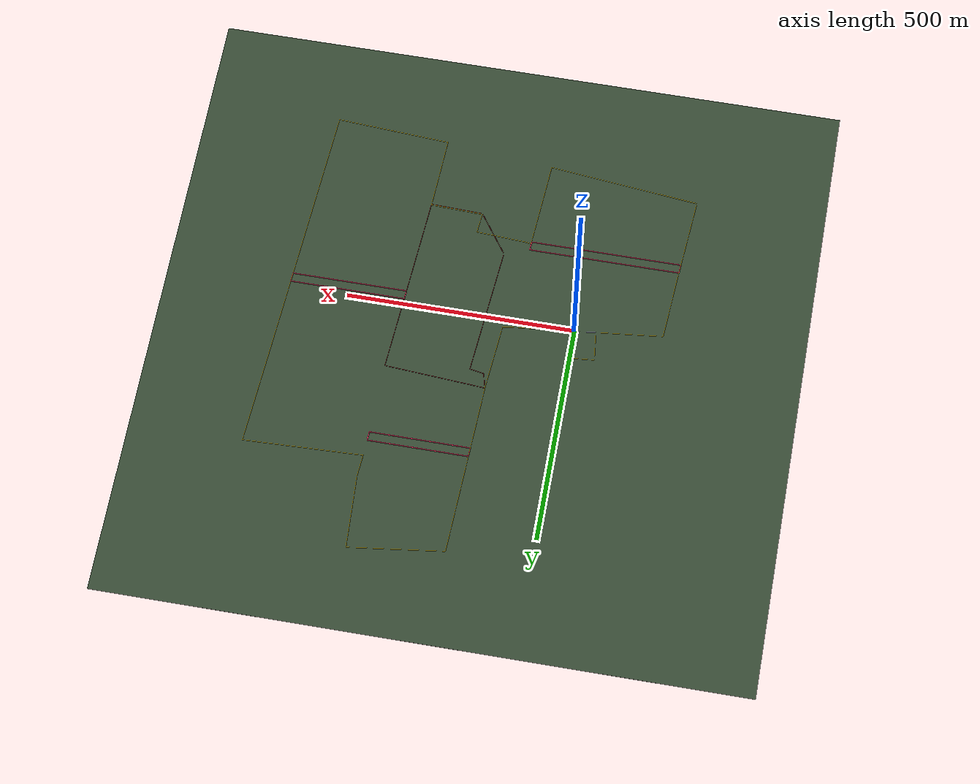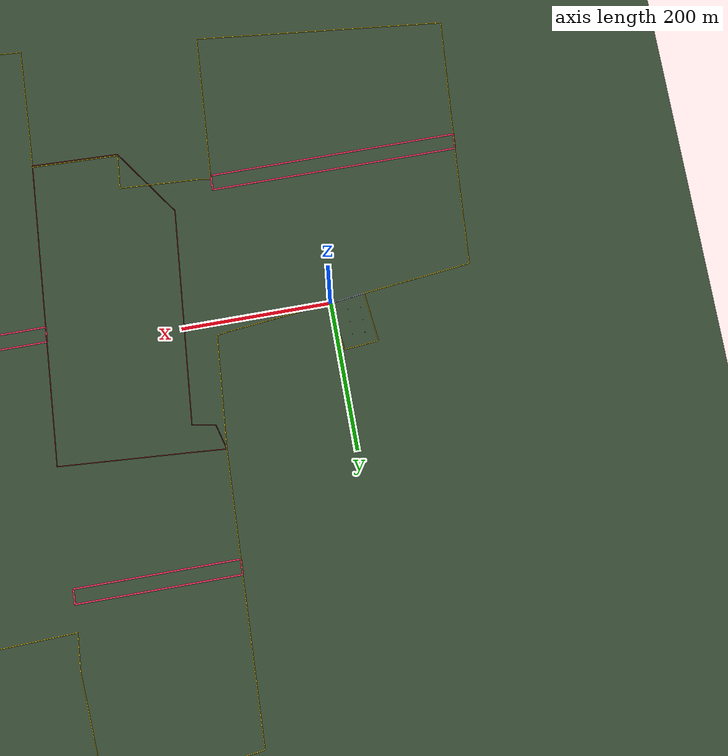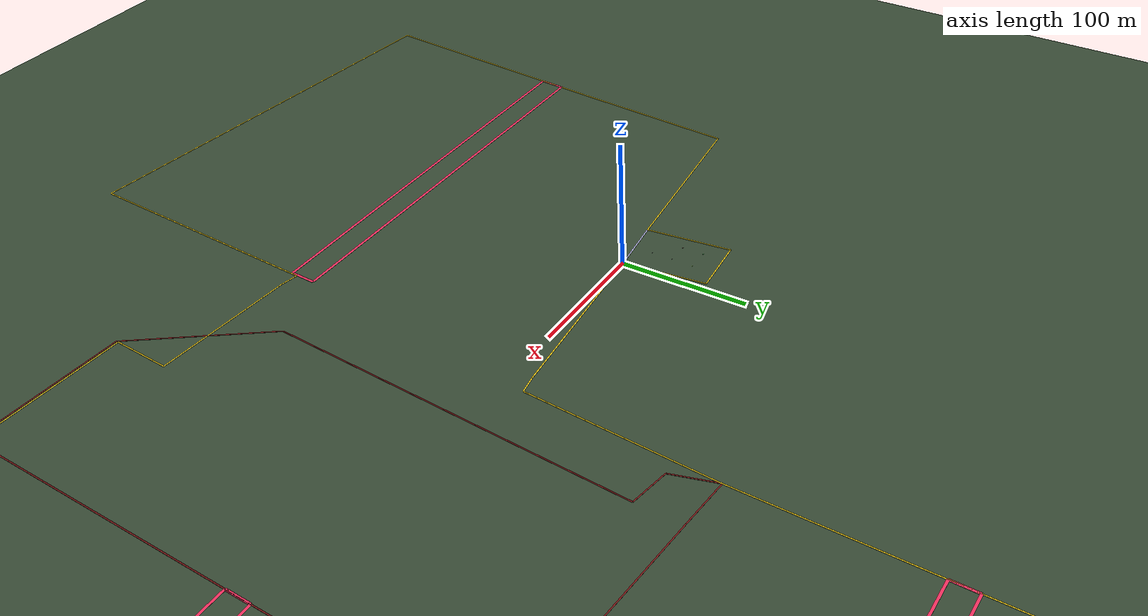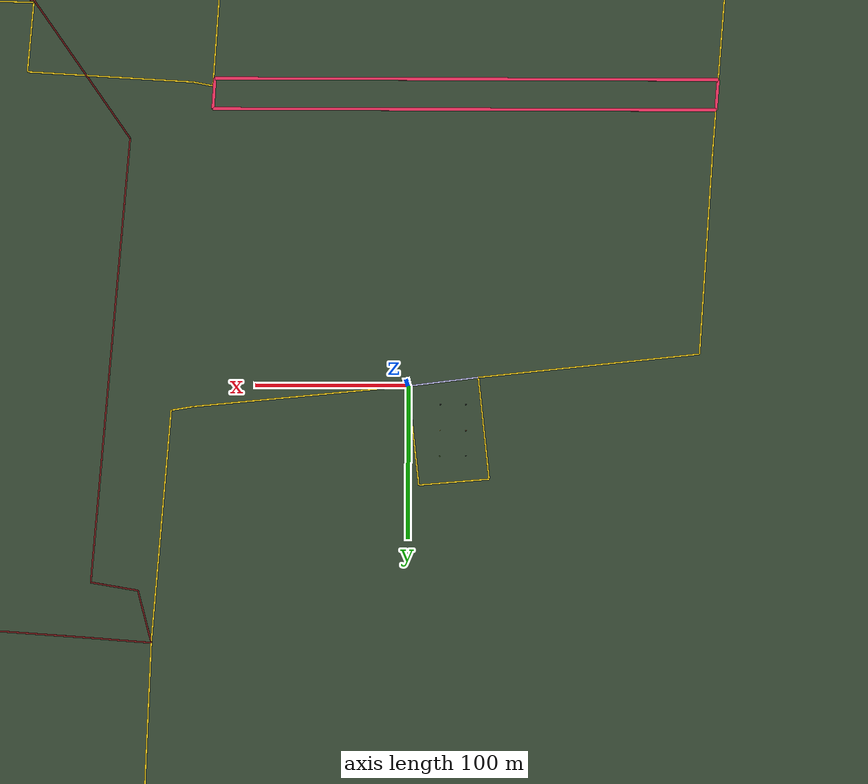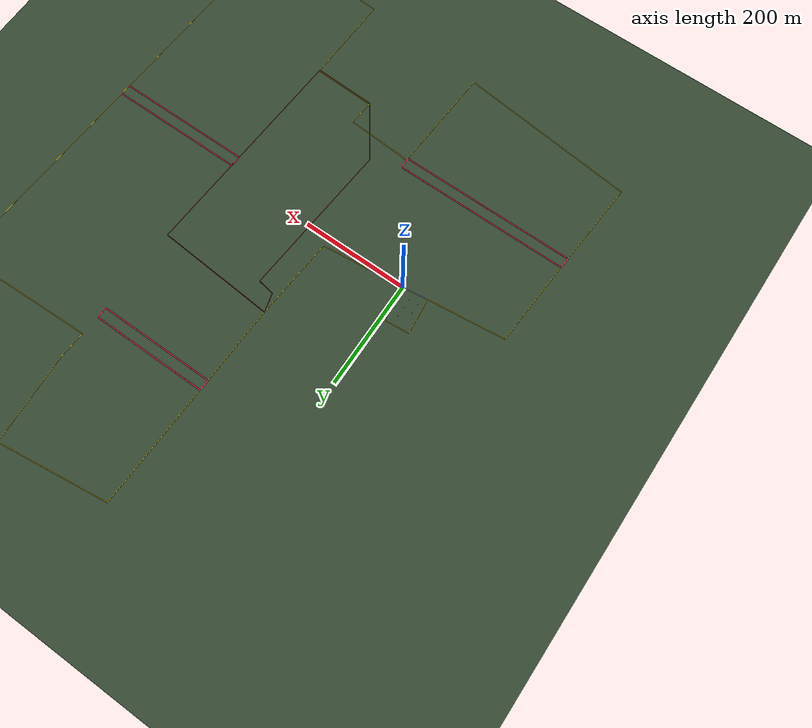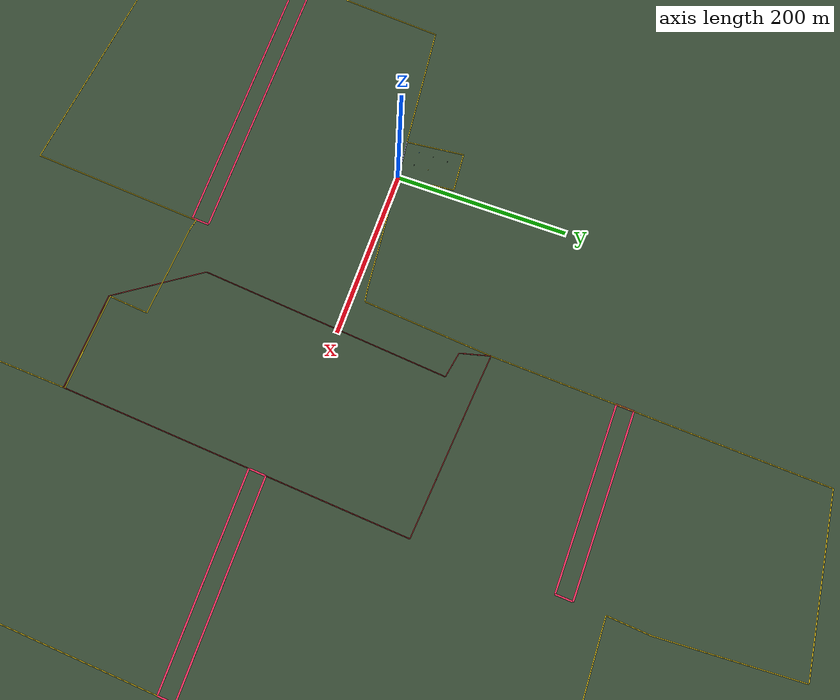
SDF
<?xml version="1.0"?><sdf version="1.9"><world name="zhixin_fleet_kinematic">
<plugin filename="gz-sim-user-commands-system" name="gz::sim::systems::UserCommands"/>
<plugin filename="gz-sim-physics-system" name="gz::sim::systems::Physics"/>
<plugin filename="gz-sim-scene-broadcaster-system" name="gz::sim::systems::SceneBroadcaster"/>
<scene><ambient>.6 .6 .6 1</ambient><background>.5 .65 .8 1</background></scene>
<light name="sun" type="directional"><pose>0 0 100 0 0 0</pose><diffuse>.8 .8 .8 1</diffuse><direction>-.3 .2 -1</direction></light>
<model name="ground"><static>true</static><pose>200 70 -.1 0 0 0</pose><link name="body"><visual name="ground"><pose>0 0 0 0 0 0</pose><geometry><box><size>1400 1400 0.2</size></box></geometry><material><ambient>0.23 0.31 0.22 1</ambient><diffuse>0.23 0.31 0.22 1</diffuse></material></visual></link></model><model name="perimeter_0_0"><static>true</static><pose>70.355 6.91 .1 0 0 -3.0436904604272934</pose><link name="body"><visual name="line"><pose>0 0 0 0 0 0</pose><geometry><box><size>141.38704502181238 1 0.12</size></box></geometry><material><ambient>1 .85 .1 1</ambient><diffuse>1 .85 .1 1</diffuse></material></visual></link></model><model name="perimeter_0_1"><static>true</static><pose>-3.595 32.395 .1 0 0 1.681318023659949</pose><link name="body"><visual name="line"><pose>0 0 0 0 0 0</pose><geometry><box><size>65.18773044062817 1 0.12</size></box></geometry><material><ambient>1 .85 .1 1</ambient><diffuse>1 .85 .1 1</diffuse></material></visual></link></model><model name="perimeter_0_2"><static>true</static><pose>-30.169999999999998 62.795 .1 0 0 -3.0549951520488126</pose><link name="body"><visual name="line"><pose>0 0 0 0 0 0</pose><geometry><box><size>46.13287006029432 1 0.12</size></box></geometry><material><ambient>1 .85 .1 1</ambient><diffuse>1 .85 .1 1</diffuse></material></visual></link></model><model name="perimeter_0_3"><static>true</static><pose>-49.555 27.485 .1 0 0 -1.4633029219769413</pose><link name="body"><visual name="line"><pose>0 0 0 0 0 0</pose><geometry><box><size>67.01681132372683 1 0.12</size></box></geometry><material><ambient>1 .85 .1 1</ambient><diffuse>1 .85 .1 1</diffuse></material></visual></link></model><model name="perimeter_0_4"><static>true</static><pose>-118.37 -13.66 .1 0 0 -3.033876957168247</pose><link name="body"><visual name="line"><pose>0 0 0 0 0 0</pose><geometry><box><size>145.6642303381307 1 0.12</size></box></geometry><material><ambient>1 .85 .1 1</ambient><diffuse>1 .85 .1 1</diffuse></material></visual></link></model><model name="perimeter_0_5"><static>true</static><pose>-195.14499999999998 -88.43 .1 0 0 -1.635911788722417</pose><link name="body"><visual name="line"><pose>0 0 0 0 0 0</pose><geometry><box><size>134.1643294620444 1 0.12</size></box></geometry><material><ambient>1 .85 .1 1</ambient><diffuse>1 .85 .1 1</diffuse></material></visual></link></model><model name="perimeter_0_6"><static>true</static><pose>-207.47 -258.385 .1 0 0 -1.64791338991315</pose><link name="body"><visual name="line"><pose>0 0 0 0 0 0</pose><geometry><box><size>206.64415622030057 1 0.12</size></box></geometry><material><ambient>1 .85 .1 1</ambient><diffuse>1 .85 .1 1</diffuse></material></visual></link></model><model name="perimeter_0_7"><static>true</static><pose>-49.815000000000005 -379.06 .1 0 0 -0.10623142980244317</pose><link name="body"><visual name="line"><pose>0 0 0 0 0 0</pose><geometry><box><size>333.1078133277573 1 0.12</size></box></geometry><material><ambient>1 .85 .1 1</ambient><diffuse>1 .85 .1 1</diffuse></material></visual></link></model><model name="perimeter_0_8"><static>true</static><pose>122.35 -296.925 .1 0 0 1.5052557820058599</pose><link name="body"><visual name="line"><pose>0 0 0 0 0 0</pose><geometry><box><size>200.01944430479756 1 0.12</size></box></geometry><material><ambient>1 .85 .1 1</ambient><diffuse>1 .85 .1 1</diffuse></material></visual></link></model><model name="perimeter_0_9"><static>true</static><pose>135.445 -198.36 .1 0 0 -0.18576304083063205</pose><link name="body"><visual name="line"><pose>0 0 0 0 0 0</pose><geometry><box><size>13.319147870640979 1 0.12</size></box></geometry><material><ambient>1 .85 .1 1</ambient><diffuse>1 .85 .1 1</diffuse></material></visual></link></model><model name="perimeter_0_10"><static>true</static><pose>196.425 -202.81 .1 0 0 -0.05908426883067076</pose><link name="body"><visual name="line"><pose>0 0 0 0 0 0</pose><geometry><box><size>109.06030671147043 1 0.12</size></box></geometry><material><ambient>1 .85 .1 1</ambient><diffuse>1 .85 .1 1</diffuse></material></visual></link></model><model name="perimeter_0_11"><static>true</static><pose>248.935 -228.91 .1 0 0 -1.6547332617181123</pose><link name="body"><visual name="line"><pose>0 0 0 0 0 0</pose><geometry><box><size>45.92167353222223 1 0.12</size></box></geometry><material><ambient>1 .85 .1 1</ambient><diffuse>1 .85 .1 1</diffuse></material></visual></link></model><model name="perimeter_0_12"><static>true</static><pose>304.395 -253.785 .1 0 0 -0.03475118674609526</pose><link name="body"><visual name="line"><pose>0 0 0 0 0 0</pose><geometry><box><size>114.83933559543087 1 0.12</size></box></geometry><material><ambient>1 .85 .1 1</ambient><diffuse>1 .85 .1 1</diffuse></material></visual></link></model><model name="perimeter_0_13"><static>true</static><pose>358.18499999999995 -337.915 .1 0 0 -1.6145378123404501</pose><link name="body"><visual name="line"><pose>0 0 0 0 0 0</pose><geometry><box><size>164.42727571786867 1 0.12</size></box></geometry><material><ambient>1 .85 .1 1</ambient><diffuse>1 .85 .1 1</diffuse></material></visual></link></model><model name="perimeter_0_14"><static>true</static><pose>479.51 -428.03499999999997 .1 0 0 -0.06383406440748182</pose><link name="body"><visual name="line"><pose>0 0 0 0 0 0</pose><geometry><box><size>250.34988815655578 1 0.12</size></box></geometry><material><ambient>1 .85 .1 1</ambient><diffuse>1 .85 .1 1</diffuse></material></visual></link></model><model name="perimeter_0_15"><static>true</static><pose>609.565 -351.58 .1 0 0 1.5100587141753221</pose><link name="body"><visual name="line"><pose>0 0 0 0 0 0</pose><geometry><box><size>169.19198355714138 1 0.12</size></box></geometry><material><ambient>1 .85 .1 1</ambient><diffuse>1 .85 .1 1</diffuse></material></visual></link></model><model name="perimeter_0_16"><static>true</static><pose>626.7650000000001 -62.79499999999999 .1 0 0 1.5118224847879207</pose><link name="body"><visual name="line"><pose>0 0 0 0 0 0</pose><geometry><box><size>409.40172569250365 1 0.12</size></box></geometry><material><ambient>1 .85 .1 1</ambient><diffuse>1 .85 .1 1</diffuse></material></visual></link></model><model name="perimeter_0_17"><static>true</static><pose>646.28 260.23 .1 0 0 1.5081047413680837</pose><link name="body"><visual name="line"><pose>0 0 0 0 0 0</pose><geometry><box><size>237.82720534034792 1 0.12</size></box></geometry><material><ambient>1 .85 .1 1</ambient><diffuse>1 .85 .1 1</diffuse></material></visual></link></model><model name="perimeter_0_18"><static>true</static><pose>523.8050000000001 374.3 .1 0 0 -3.1061255237972265</pose><link name="body"><visual name="line"><pose>0 0 0 0 0 0</pose><geometry><box><size>260.01352060998676 1 0.12</size></box></geometry><material><ambient>1 .85 .1 1</ambient><diffuse>1 .85 .1 1</diffuse></material></visual></link></model><model name="perimeter_0_19"><static>true</static><pose>395.675 394.71500000000003 .1 0 0 1.4991906893906894</pose><link name="body"><visual name="line"><pose>0 0 0 0 0 0</pose><geometry><box><size>50.17858706659646 1 0.12</size></box></geometry><material><ambient>1 .85 .1 1</ambient><diffuse>1 .85 .1 1</diffuse></material></visual></link></model><model name="perimeter_0_20"><static>true</static><pose>393.235 502.035 .1 0 0 1.6222121779960084</pose><link name="body"><visual name="line"><pose>0 0 0 0 0 0</pose><geometry><box><size>164.80779411180774 1 0.12</size></box></geometry><material><ambient>1 .85 .1 1</ambient><diffuse>1 .85 .1 1</diffuse></material></visual></link></model><model name="perimeter_0_21"><static>true</static><pose>285.65 570.8199999999999 .1 0 0 -3.0116088434327524</pose><link name="body"><visual name="line"><pose>0 0 0 0 0 0</pose><geometry><box><size>208.4585579917505 1 0.12</size></box></geometry><material><ambient>1 .85 .1 1</ambient><diffuse>1 .85 .1 1</diffuse></material></visual></link></model><model name="perimeter_0_22"><static>true</static><pose>174.72500000000002 362.17499999999995 .1 0 0 -1.6095961239721948</pose><link name="body"><visual name="line"><pose>0 0 0 0 0 0</pose><geometry><box><size>390.5639453405805 1 0.12</size></box></geometry><material><ambient>1 .85 .1 1</ambient><diffuse>1 .85 .1 1</diffuse></material></visual></link></model><model name="perimeter_0_23"><static>true</static><pose>161.12 91.655 .1 0 0 -1.6506157677935946</pose><link name="body"><visual name="line"><pose>0 0 0 0 0 0</pose><geometry><box><size>151.2515669340321 1 0.12</size></box></geometry><material><ambient>1 .85 .1 1</ambient><diffuse>1 .85 .1 1</diffuse></material></visual></link></model><model name="perimeter_0_24"><static>true</static><pose>147.9 15.045 .1 0 0 -2.972837545287581</pose><link name="body"><visual name="line"><pose>0 0 0 0 0 0</pose><geometry><box><size>14.587217006680879 1 0.12</size></box></geometry><material><ambient>1 .85 .1 1</ambient><diffuse>1 .85 .1 1</diffuse></material></visual></link></model><model name="forest_0_0"><static>true</static><pose>171.64800419178022 151.20967161449641 .1 0 0 -1.3124930245034698</pose><link name="body"><visual name="line"><pose>0 0 0 0 0 0</pose><geometry><box><size>35.1816020107701 1 0.12</size></box></geometry><material><ambient>.5 .1 .1 1</ambient><diffuse>.5 .1 .1 1</diffuse></material></visual></link></model><model name="forest_0_1"><static>true</static><pose>191.54736120822776 131.57406050339262 .1 0 0 -0.1689816457407856</pose><link name="body"><visual name="line"><pose>0 0 0 0 0 0</pose><geometry><box><size>31.257117028152752 1 0.12</size></box></geometry><material><ambient>.5 .1 .1 1</ambient><diffuse>.5 .1 .1 1</diffuse></material></visual></link></model><model name="forest_0_2"><static>true</static><pose>195.0137008173495 -16.697995052207375 .1 0 0 -1.6525916794495683</pose><link name="body"><visual name="line"><pose>0 0 0 0 0 0</pose><geometry><box><size>292.2644831492234 1 0.12</size></box></geometry><material><ambient>.5 .1 .1 1</ambient><diffuse>.5 .1 .1 1</diffuse></material></visual></link></model><model name="forest_0_3"><static>true</static><pose>215.04144078240472 -207.9519394968048 .1 0 0 -0.9594796689725814</pose><link name="body"><visual name="line"><pose>0 0 0 0 0 0</pose><geometry><box><size>111.39495808922948 1 0.12</size></box></geometry><material><ambient>.5 .1 .1 1</ambient><diffuse>.5 .1 .1 1</diffuse></material></visual></link></model><model name="forest_0_4"><static>true</static><pose>304.3959729338357 -255.57216171889408 .1 0 0 -0.03500996656716498</pose><link name="body"><visual name="line"><pose>0 0 0 0 0 0</pose><geometry><box><size>114.84473122892852 1 0.12</size></box></geometry><material><ambient>.5 .1 .1 1</ambient><diffuse>.5 .1 .1 1</diffuse></material></visual></link></model><model name="forest_0_5"><static>true</static><pose>375.13497755358173 -52.56777282972578 .1 0 0 1.5057618614088497</pose><link name="body"><visual name="line"><pose>0 0 0 0 0 0</pose><geometry><box><size>410.89730175244296 1 0.12</size></box></geometry><material><ambient>.5 .1 .1 1</ambient><diffuse>.5 .1 .1 1</diffuse></material></visual></link></model><model name="forest_0_6"><static>true</static><pose>297.72005961215064 158.7856160589287 .1 0 0 3.0718669029023764</pose><link name="body"><visual name="line"><pose>0 0 0 0 0 0</pose><geometry><box><size>181.97566373397237 1 0.12</size></box></geometry><material><ambient>.5 .1 .1 1</ambient><diffuse>.5 .1 .1 1</diffuse></material></visual></link></model><model name="forest_0_7"><static>true</static><pose>187.05395801090185 166.67078272546163 .1 0 0 3.0640518985054346</pose><link name="body"><visual name="line"><pose>0 0 0 0 0 0</pose><geometry><box><size>39.91866076092777 1 0.12</size></box></geometry><material><ambient>.5 .1 .1 1</ambient><diffuse>.5 .1 .1 1</diffuse></material></visual></link></model><model name="launch_0_0"><static>true</static><pose>-3.595 32.395 .1 0 0 1.681318023659949</pose><link name="body"><visual name="line"><pose>0 0 0 0 0 0</pose><geometry><box><size>65.18773044062817 1 0.12</size></box></geometry><material><ambient>.8 .8 1 1</ambient><diffuse>.8 .8 1 1</diffuse></material></visual></link></model><model name="launch_0_1"><static>true</static><pose>-30.169999999999998 62.795 .1 0 0 -3.0549951520488126</pose><link name="body"><visual name="line"><pose>0 0 0 0 0 0</pose><geometry><box><size>46.13287006029432 1 0.12</size></box></geometry><material><ambient>.8 .8 1 1</ambient><diffuse>.8 .8 1 1</diffuse></material></visual></link></model><model name="launch_0_2"><static>true</static><pose>-49.555 27.485 .1 0 0 -1.4633029219769413</pose><link name="body"><visual name="line"><pose>0 0 0 0 0 0</pose><geometry><box><size>67.01681132372683 1 0.12</size></box></geometry><material><ambient>.8 .8 1 1</ambient><diffuse>.8 .8 1 1</diffuse></material></visual></link></model><model name="launch_0_3"><static>true</static><pose>-22.98 -2.915 .1 0 0 0.12617555958845483</pose><link name="body"><visual name="line"><pose>0 0 0 0 0 0</pose><geometry><box><size>46.32829049295905 1 0.12</size></box></geometry><material><ambient>.8 .8 1 1</ambient><diffuse>.8 .8 1 1</diffuse></material></visual></link></model><model name="buffer_takeoff_0_0"><static>true</static><pose>-37.75716031395343 -202.11651469212114 .1 0 0 3.141592653589793</pose><link name="body"><visual name="line"><pose>0 0 0 0 0 0</pose><geometry><box><size>330.72991384181665 2 0.12</size></box></geometry><material><ambient>1 .2 .4 1</ambient><diffuse>1 .2 .4 1</diffuse></material></visual></link></model><model name="buffer_takeoff_0_1"><static>true</static><pose>-202.34941423044492 -192.11651469212114 .1 0 0 1.4936792636766438</pose><link name="body"><visual name="line"><pose>0 0 0 0 0 0</pose><geometry><box><size>20.059618135252204 2 0.12</size></box></geometry><material><ambient>1 .2 .4 1</ambient><diffuse>1 .2 .4 1</diffuse></material></visual></link></model><model name="buffer_takeoff_0_2"><static>true</static><pose>-36.37769548364875 -182.11651469212114 .1 0 0 0.0</pose><link name="body"><visual name="line"><pose>0 0 0 0 0 0</pose><geometry><box><size>330.3980314847587 2 0.12</size></box></geometry><material><ambient>1 .2 .4 1</ambient><diffuse>1 .2 .4 1</diffuse></material></visual></link></model><model name="buffer_takeoff_0_3"><static>true</static><pose>128.21455843284275 -192.11651469212114 .1 0 0 -1.6313982116417098</pose><link name="body"><visual name="line"><pose>0 0 0 0 0 0</pose><geometry><box><size>20.036782168138153 2 0.12</size></box></geometry><material><ambient>1 .2 .4 1</ambient><diffuse>1 .2 .4 1</diffuse></material></visual></link></model><model name="buffer_house_0_0"><static>true</static><pose>281.959606522415 313.4912486959778 .1 0 0 3.141592653589793</pose><link name="body"><visual name="line"><pose>0 0 0 0 0 0</pose><geometry><box><size>218.24894929028022 2 0.12</size></box></geometry><material><ambient>1 .2 .4 1</ambient><diffuse>1 .2 .4 1</diffuse></material></visual></link></model><model name="buffer_house_0_1"><static>true</static><pose>173.22332466688206 323.4912486959778 .1 0 0 1.5319965296175992</pose><link name="body"><visual name="line"><pose>0 0 0 0 0 0</pose><geometry><box><size>20.015063691320396 2 0.12</size></box></geometry><material><ambient>1 .2 .4 1</ambient><diffuse>1 .2 .4 1</diffuse></material></visual></link></model><model name="buffer_house_0_2"><static>true</static><pose>282.8453048201641 333.4912486959778 .1 0 0 0.0</pose><link name="body"><visual name="line"><pose>0 0 0 0 0 0</pose><geometry><box><size>218.4675747273497 2 0.12</size></box></geometry><material><ambient>1 .2 .4 1</ambient><diffuse>1 .2 .4 1</diffuse></material></visual></link></model><model name="buffer_house_0_3"><static>true</static><pose>391.58158667569705 323.4912486959778 .1 0 0 -1.6205058923081774</pose><link name="body"><visual name="line"><pose>0 0 0 0 0 0</pose><geometry><box><size>20.02473587647353 2 0.12</size></box></geometry><material><ambient>1 .2 .4 1</ambient><diffuse>1 .2 .4 1</diffuse></material></visual></link></model><model name="buffer_grass_0_0"><static>true</static><pose>502.3657176869293 -34.62750054356131 .1 0 0 3.141592653589793</pose><link name="body"><visual name="line"><pose>0 0 0 0 0 0</pose><geometry><box><size>252.12471286506997 2 0.12</size></box></geometry><material><ambient>1 .2 .4 1</ambient><diffuse>1 .2 .4 1</diffuse></material></visual></link></model><model name="buffer_grass_0_1"><static>true</static><pose>376.9546243356764 -24.62750054356131 .1 0 0 1.50576186140885</pose><link name="body"><visual name="line"><pose>0 0 0 0 0 0</pose><geometry><box><size>20.042369480781556 2 0.12</size></box></geometry><material><ambient>1 .2 .4 1</ambient><diffuse>1 .2 .4 1</diffuse></material></visual></link></model><model name="buffer_grass_0_2"><static>true</static><pose>503.60740382725373 -14.627500543561307 .1 0 0 0.0</pose><link name="body"><visual name="line"><pose>0 0 0 0 0 0</pose><geometry><box><size>252.0030328205906 2 0.12</size></box></geometry><material><ambient>1 .2 .4 1</ambient><diffuse>1 .2 .4 1</diffuse></material></visual></link></model><model name="buffer_grass_0_3"><static>true</static><pose>629.0184971785067 -24.62750054356131 .1 0 0 -1.6297701688018755</pose><link name="body"><visual name="line"><pose>0 0 0 0 0 0</pose><geometry><box><size>20.034829611319278 2 0.12</size></box></geometry><material><ambient>1 .2 .4 1</ambient><diffuse>1 .2 .4 1</diffuse></material></visual></link></model><model name="uav_1"><static>true</static><pose>-38 12 .25 0 0 0</pose><link name="body"><visual name="fuselage"><pose>0 0 .08 0 0 0</pose><geometry><box><size>0.22 0.18 0.12</size></box></geometry><material><ambient>.1 .5 1 1</ambient><diffuse>.1 .5 1 1</diffuse></material></visual><visual name="arm_0"><pose>0.12374368670764582 0.12374368670764582 .06 0 0 0.7853981633974483</pose><geometry><box><size>0.35 0.025 0.025</size></box></geometry><material><ambient>0.12 .12 .12 1</ambient><diffuse>0.12 .12 .12 1</diffuse></material></visual><visual name="propeller_0"><pose>0.24748737341529164 0.24748737341529164 .16 0 0 0</pose><geometry><cylinder><radius>.2286</radius><length>.008</length></cylinder></geometry><material><ambient>.35 .35 .35 .65</ambient><diffuse>.35 .35 .35 .65</diffuse></material></visual><visual name="arm_1"><pose>-0.1237436867076458 0.12374368670764582 .06 0 0 2.356194490192345</pose><geometry><box><size>0.35 0.025 0.025</size></box></geometry><material><ambient>0.12 .12 .12 1</ambient><diffuse>0.12 .12 .12 1</diffuse></material></visual><visual name="propeller_1"><pose>-0.2474873734152916 0.24748737341529164 .16 0 0 0</pose><geometry><cylinder><radius>.2286</radius><length>.008</length></cylinder></geometry><material><ambient>.35 .35 .35 .65</ambient><diffuse>.35 .35 .35 .65</diffuse></material></visual><visual name="arm_2"><pose>-0.12374368670764584 -0.1237436867076458 .06 0 0 3.9269908169872414</pose><geometry><box><size>0.35 0.025 0.025</size></box></geometry><material><ambient>0.12 .12 .12 1</ambient><diffuse>0.12 .12 .12 1</diffuse></material></visual><visual name="propeller_2"><pose>-0.24748737341529167 -0.2474873734152916 .16 0 0 0</pose><geometry><cylinder><radius>.2286</radius><length>.008</length></cylinder></geometry><material><ambient>.35 .35 .35 .65</ambient><diffuse>.35 .35 .35 .65</diffuse></material></visual><visual name="arm_3"><pose>0.12374368670764578 -0.12374368670764584 .06 0 0 5.497787143782138</pose><geometry><box><size>0.35 0.025 0.025</size></box></geometry><material><ambient>0.12 .12 .12 1</ambient><diffuse>0.12 .12 .12 1</diffuse></material></visual><visual name="propeller_3"><pose>0.24748737341529156 -0.24748737341529167 .16 0 0 0</pose><geometry><cylinder><radius>.2286</radius><length>.008</length></cylinder></geometry><material><ambient>.35 .35 .35 .65</ambient><diffuse>.35 .35 .35 .65</diffuse></material></visual><visual name="gimbal_mount"><pose>0 0 -.03 0 0 0</pose><geometry><box><size>0.09 0.08 0.08</size></box></geometry><material><ambient>.2 .2 .2 1</ambient><diffuse>.2 .2 .2 1</diffuse></material></visual></link></model><model name="uav_1_camera"><static>true</static><pose>-38 12 .14 0 0 0</pose><link name="body"><visual name="camera"><pose>0 0 0 0 0 0</pose><geometry><box><size>0.08 0.07 0.06</size></box></geometry><material><ambient>.1 .1 .1 1</ambient><diffuse>.1 .1 .1 1</diffuse></material></visual><visual name="lens"><pose>.045 0 0 0 1.5708 0</pose><geometry><cylinder><radius>.022</radius><length>.02</length></cylinder></geometry><material><ambient>.1 .6 .9 1</ambient><diffuse>.1 .6 .9 1</diffuse></material></visual></link></model><model name="uav_2"><static>true</static><pose>-21 12 .25 0 0 0</pose><link name="body"><visual name="fuselage"><pose>0 0 .08 0 0 0</pose><geometry><box><size>0.22 0.18 0.12</size></box></geometry><material><ambient>.4 .7 1 1</ambient><diffuse>.4 .7 1 1</diffuse></material></visual><visual name="arm_0"><pose>0.12374368670764582 0.12374368670764582 .06 0 0 0.7853981633974483</pose><geometry><box><size>0.35 0.025 0.025</size></box></geometry><material><ambient>0.12 .12 .12 1</ambient><diffuse>0.12 .12 .12 1</diffuse></material></visual><visual name="propeller_0"><pose>0.24748737341529164 0.24748737341529164 .16 0 0 0</pose><geometry><cylinder><radius>.2286</radius><length>.008</length></cylinder></geometry><material><ambient>.35 .35 .35 .65</ambient><diffuse>.35 .35 .35 .65</diffuse></material></visual><visual name="arm_1"><pose>-0.1237436867076458 0.12374368670764582 .06 0 0 2.356194490192345</pose><geometry><box><size>0.35 0.025 0.025</size></box></geometry><material><ambient>0.12 .12 .12 1</ambient><diffuse>0.12 .12 .12 1</diffuse></material></visual><visual name="propeller_1"><pose>-0.2474873734152916 0.24748737341529164 .16 0 0 0</pose><geometry><cylinder><radius>.2286</radius><length>.008</length></cylinder></geometry><material><ambient>.35 .35 .35 .65</ambient><diffuse>.35 .35 .35 .65</diffuse></material></visual><visual name="arm_2"><pose>-0.12374368670764584 -0.1237436867076458 .06 0 0 3.9269908169872414</pose><geometry><box><size>0.35 0.025 0.025</size></box></geometry><material><ambient>0.12 .12 .12 1</ambient><diffuse>0.12 .12 .12 1</diffuse></material></visual><visual name="propeller_2"><pose>-0.24748737341529167 -0.2474873734152916 .16 0 0 0</pose><geometry><cylinder><radius>.2286</radius><length>.008</length></cylinder></geometry><material><ambient>.35 .35 .35 .65</ambient><diffuse>.35 .35 .35 .65</diffuse></material></visual><visual name="arm_3"><pose>0.12374368670764578 -0.12374368670764584 .06 0 0 5.497787143782138</pose><geometry><box><size>0.35 0.025 0.025</size></box></geometry><material><ambient>0.12 .12 .12 1</ambient><diffuse>0.12 .12 .12 1</diffuse></material></visual><visual name="propeller_3"><pose>0.24748737341529156 -0.24748737341529167 .16 0 0 0</pose><geometry><cylinder><radius>.2286</radius><length>.008</length></cylinder></geometry><material><ambient>.35 .35 .35 .65</ambient><diffuse>.35 .35 .35 .65</diffuse></material></visual><visual name="gimbal_mount"><pose>0 0 -.03 0 0 0</pose><geometry><box><size>0.09 0.08 0.08</size></box></geometry><material><ambient>.2 .2 .2 1</ambient><diffuse>.2 .2 .2 1</diffuse></material></visual></link></model><model name="uav_2_camera"><static>true</static><pose>-21 12 .14 0 0 0</pose><link name="body"><visual name="camera"><pose>0 0 0 0 0 0</pose><geometry><box><size>0.08 0.07 0.06</size></box></geometry><material><ambient>.1 .1 .1 1</ambient><diffuse>.1 .1 .1 1</diffuse></material></visual><visual name="lens"><pose>.045 0 0 0 1.5708 0</pose><geometry><cylinder><radius>.022</radius><length>.02</length></cylinder></geometry><material><ambient>.1 .6 .9 1</ambient><diffuse>.1 .6 .9 1</diffuse></material></visual></link></model><model name="uav_3"><static>true</static><pose>-38 29 .25 0 0 0</pose><link name="body"><visual name="fuselage"><pose>0 0 .08 0 0 0</pose><geometry><box><size>0.22 0.18 0.12</size></box></geometry><material><ambient>1 .5 .1 1</ambient><diffuse>1 .5 .1 1</diffuse></material></visual><visual name="arm_0"><pose>0.12374368670764582 0.12374368670764582 .06 0 0 0.7853981633974483</pose><geometry><box><size>0.35 0.025 0.025</size></box></geometry><material><ambient>0.12 .12 .12 1</ambient><diffuse>0.12 .12 .12 1</diffuse></material></visual><visual name="propeller_0"><pose>0.24748737341529164 0.24748737341529164 .16 0 0 0</pose><geometry><cylinder><radius>.2286</radius><length>.008</length></cylinder></geometry><material><ambient>.35 .35 .35 .65</ambient><diffuse>.35 .35 .35 .65</diffuse></material></visual><visual name="arm_1"><pose>-0.1237436867076458 0.12374368670764582 .06 0 0 2.356194490192345</pose><geometry><box><size>0.35 0.025 0.025</size></box></geometry><material><ambient>0.12 .12 .12 1</ambient><diffuse>0.12 .12 .12 1</diffuse></material></visual><visual name="propeller_1"><pose>-0.2474873734152916 0.24748737341529164 .16 0 0 0</pose><geometry><cylinder><radius>.2286</radius><length>.008</length></cylinder></geometry><material><ambient>.35 .35 .35 .65</ambient><diffuse>.35 .35 .35 .65</diffuse></material></visual><visual name="arm_2"><pose>-0.12374368670764584 -0.1237436867076458 .06 0 0 3.9269908169872414</pose><geometry><box><size>0.35 0.025 0.025</size></box></geometry><material><ambient>0.12 .12 .12 1</ambient><diffuse>0.12 .12 .12 1</diffuse></material></visual><visual name="propeller_2"><pose>-0.24748737341529167 -0.2474873734152916 .16 0 0 0</pose><geometry><cylinder><radius>.2286</radius><length>.008</length></cylinder></geometry><material><ambient>.35 .35 .35 .65</ambient><diffuse>.35 .35 .35 .65</diffuse></material></visual><visual name="arm_3"><pose>0.12374368670764578 -0.12374368670764584 .06 0 0 5.497787143782138</pose><geometry><box><size>0.35 0.025 0.025</size></box></geometry><material><ambient>0.12 .12 .12 1</ambient><diffuse>0.12 .12 .12 1</diffuse></material></visual><visual name="propeller_3"><pose>0.24748737341529156 -0.24748737341529167 .16 0 0 0</pose><geometry><cylinder><radius>.2286</radius><length>.008</length></cylinder></geometry><material><ambient>.35 .35 .35 .65</ambient><diffuse>.35 .35 .35 .65</diffuse></material></visual><visual name="gimbal_mount"><pose>0 0 -.03 0 0 0</pose><geometry><box><size>0.09 0.08 0.08</size></box></geometry><material><ambient>.2 .2 .2 1</ambient><diffuse>.2 .2 .2 1</diffuse></material></visual></link></model><model name="uav_3_camera"><static>true</static><pose>-38 29 .14 0 0 0</pose><link name="body"><visual name="camera"><pose>0 0 0 0 0 0</pose><geometry><box><size>0.08 0.07 0.06</size></box></geometry><material><ambient>.1 .1 .1 1</ambient><diffuse>.1 .1 .1 1</diffuse></material></visual><visual name="lens"><pose>.045 0 0 0 1.5708 0</pose><geometry><cylinder><radius>.022</radius><length>.02</length></cylinder></geometry><material><ambient>.1 .6 .9 1</ambient><diffuse>.1 .6 .9 1</diffuse></material></visual></link></model><model name="uav_4"><static>true</static><pose>-21 29 .25 0 0 0</pose><link name="body"><visual name="fuselage"><pose>0 0 .08 0 0 0</pose><geometry><box><size>0.22 0.18 0.12</size></box></geometry><material><ambient>1 .8 .1 1</ambient><diffuse>1 .8 .1 1</diffuse></material></visual><visual name="arm_0"><pose>0.12374368670764582 0.12374368670764582 .06 0 0 0.7853981633974483</pose><geometry><box><size>0.35 0.025 0.025</size></box></geometry><material><ambient>0.12 .12 .12 1</ambient><diffuse>0.12 .12 .12 1</diffuse></material></visual><visual name="propeller_0"><pose>0.24748737341529164 0.24748737341529164 .16 0 0 0</pose><geometry><cylinder><radius>.2286</radius><length>.008</length></cylinder></geometry><material><ambient>.35 .35 .35 .65</ambient><diffuse>.35 .35 .35 .65</diffuse></material></visual><visual name="arm_1"><pose>-0.1237436867076458 0.12374368670764582 .06 0 0 2.356194490192345</pose><geometry><box><size>0.35 0.025 0.025</size></box></geometry><material><ambient>0.12 .12 .12 1</ambient><diffuse>0.12 .12 .12 1</diffuse></material></visual><visual name="propeller_1"><pose>-0.2474873734152916 0.24748737341529164 .16 0 0 0</pose><geometry><cylinder><radius>.2286</radius><length>.008</length></cylinder></geometry><material><ambient>.35 .35 .35 .65</ambient><diffuse>.35 .35 .35 .65</diffuse></material></visual><visual name="arm_2"><pose>-0.12374368670764584 -0.1237436867076458 .06 0 0 3.9269908169872414</pose><geometry><box><size>0.35 0.025 0.025</size></box></geometry><material><ambient>0.12 .12 .12 1</ambient><diffuse>0.12 .12 .12 1</diffuse></material></visual><visual name="propeller_2"><pose>-0.24748737341529167 -0.2474873734152916 .16 0 0 0</pose><geometry><cylinder><radius>.2286</radius><length>.008</length></cylinder></geometry><material><ambient>.35 .35 .35 .65</ambient><diffuse>.35 .35 .35 .65</diffuse></material></visual><visual name="arm_3"><pose>0.12374368670764578 -0.12374368670764584 .06 0 0 5.497787143782138</pose><geometry><box><size>0.35 0.025 0.025</size></box></geometry><material><ambient>0.12 .12 .12 1</ambient><diffuse>0.12 .12 .12 1</diffuse></material></visual><visual name="propeller_3"><pose>0.24748737341529156 -0.24748737341529167 .16 0 0 0</pose><geometry><cylinder><radius>.2286</radius><length>.008</length></cylinder></geometry><material><ambient>.35 .35 .35 .65</ambient><diffuse>.35 .35 .35 .65</diffuse></material></visual><visual name="gimbal_mount"><pose>0 0 -.03 0 0 0</pose><geometry><box><size>0.09 0.08 0.08</size></box></geometry><material><ambient>.2 .2 .2 1</ambient><diffuse>.2 .2 .2 1</diffuse></material></visual></link></model><model name="uav_4_camera"><static>true</static><pose>-21 29 .14 0 0 0</pose><link name="body"><visual name="camera"><pose>0 0 0 0 0 0</pose><geometry><box><size>0.08 0.07 0.06</size></box></geometry><material><ambient>.1 .1 .1 1</ambient><diffuse>.1 .1 .1 1</diffuse></material></visual><visual name="lens"><pose>.045 0 0 0 1.5708 0</pose><geometry><cylinder><radius>.022</radius><length>.02</length></cylinder></geometry><material><ambient>.1 .6 .9 1</ambient><diffuse>.1 .6 .9 1</diffuse></material></visual></link></model><model name="uav_5"><static>true</static><pose>-38 46 .25 0 0 0</pose><link name="body"><visual name="fuselage"><pose>0 0 .08 0 0 0</pose><geometry><box><size>0.22 0.18 0.12</size></box></geometry><material><ambient>.2 .9 .3 1</ambient><diffuse>.2 .9 .3 1</diffuse></material></visual><visual name="arm_0"><pose>0.12374368670764582 0.12374368670764582 .06 0 0 0.7853981633974483</pose><geometry><box><size>0.35 0.025 0.025</size></box></geometry><material><ambient>0.12 .12 .12 1</ambient><diffuse>0.12 .12 .12 1</diffuse></material></visual><visual name="propeller_0"><pose>0.24748737341529164 0.24748737341529164 .16 0 0 0</pose><geometry><cylinder><radius>.2286</radius><length>.008</length></cylinder></geometry><material><ambient>.35 .35 .35 .65</ambient><diffuse>.35 .35 .35 .65</diffuse></material></visual><visual name="arm_1"><pose>-0.1237436867076458 0.12374368670764582 .06 0 0 2.356194490192345</pose><geometry><box><size>0.35 0.025 0.025</size></box></geometry><material><ambient>0.12 .12 .12 1</ambient><diffuse>0.12 .12 .12 1</diffuse></material></visual><visual name="propeller_1"><pose>-0.2474873734152916 0.24748737341529164 .16 0 0 0</pose><geometry><cylinder><radius>.2286</radius><length>.008</length></cylinder></geometry><material><ambient>.35 .35 .35 .65</ambient><diffuse>.35 .35 .35 .65</diffuse></material></visual><visual name="arm_2"><pose>-0.12374368670764584 -0.1237436867076458 .06 0 0 3.9269908169872414</pose><geometry><box><size>0.35 0.025 0.025</size></box></geometry><material><ambient>0.12 .12 .12 1</ambient><diffuse>0.12 .12 .12 1</diffuse></material></visual><visual name="propeller_2"><pose>-0.24748737341529167 -0.2474873734152916 .16 0 0 0</pose><geometry><cylinder><radius>.2286</radius><length>.008</length></cylinder></geometry><material><ambient>.35 .35 .35 .65</ambient><diffuse>.35 .35 .35 .65</diffuse></material></visual><visual name="arm_3"><pose>0.12374368670764578 -0.12374368670764584 .06 0 0 5.497787143782138</pose><geometry><box><size>0.35 0.025 0.025</size></box></geometry><material><ambient>0.12 .12 .12 1</ambient><diffuse>0.12 .12 .12 1</diffuse></material></visual><visual name="propeller_3"><pose>0.24748737341529156 -0.24748737341529167 .16 0 0 0</pose><geometry><cylinder><radius>.2286</radius><length>.008</length></cylinder></geometry><material><ambient>.35 .35 .35 .65</ambient><diffuse>.35 .35 .35 .65</diffuse></material></visual><visual name="gimbal_mount"><pose>0 0 -.03 0 0 0</pose><geometry><box><size>0.09 0.08 0.08</size></box></geometry><material><ambient>.2 .2 .2 1</ambient><diffuse>.2 .2 .2 1</diffuse></material></visual></link></model><model name="uav_5_camera"><static>true</static><pose>-38 46 .14 0 0 0</pose><link name="body"><visual name="camera"><pose>0 0 0 0 0 0</pose><geometry><box><size>0.08 0.07 0.06</size></box></geometry><material><ambient>.1 .1 .1 1</ambient><diffuse>.1 .1 .1 1</diffuse></material></visual><visual name="lens"><pose>.045 0 0 0 1.5708 0</pose><geometry><cylinder><radius>.022</radius><length>.02</length></cylinder></geometry><material><ambient>.1 .6 .9 1</ambient><diffuse>.1 .6 .9 1</diffuse></material></visual></link></model><model name="uav_6"><static>true</static><pose>-21 46 .25 0 0 0</pose><link name="body"><visual name="fuselage"><pose>0 0 .08 0 0 0</pose><geometry><box><size>0.22 0.18 0.12</size></box></geometry><material><ambient>.6 1 .2 1</ambient><diffuse>.6 1 .2 1</diffuse></material></visual><visual name="arm_0"><pose>0.12374368670764582 0.12374368670764582 .06 0 0 0.7853981633974483</pose><geometry><box><size>0.35 0.025 0.025</size></box></geometry><material><ambient>0.12 .12 .12 1</ambient><diffuse>0.12 .12 .12 1</diffuse></material></visual><visual name="propeller_0"><pose>0.24748737341529164 0.24748737341529164 .16 0 0 0</pose><geometry><cylinder><radius>.2286</radius><length>.008</length></cylinder></geometry><material><ambient>.35 .35 .35 .65</ambient><diffuse>.35 .35 .35 .65</diffuse></material></visual><visual name="arm_1"><pose>-0.1237436867076458 0.12374368670764582 .06 0 0 2.356194490192345</pose><geometry><box><size>0.35 0.025 0.025</size></box></geometry><material><ambient>0.12 .12 .12 1</ambient><diffuse>0.12 .12 .12 1</diffuse></material></visual><visual name="propeller_1"><pose>-0.2474873734152916 0.24748737341529164 .16 0 0 0</pose><geometry><cylinder><radius>.2286</radius><length>.008</length></cylinder></geometry><material><ambient>.35 .35 .35 .65</ambient><diffuse>.35 .35 .35 .65</diffuse></material></visual><visual name="arm_2"><pose>-0.12374368670764584 -0.1237436867076458 .06 0 0 3.9269908169872414</pose><geometry><box><size>0.35 0.025 0.025</size></box></geometry><material><ambient>0.12 .12 .12 1</ambient><diffuse>0.12 .12 .12 1</diffuse></material></visual><visual name="propeller_2"><pose>-0.24748737341529167 -0.2474873734152916 .16 0 0 0</pose><geometry><cylinder><radius>.2286</radius><length>.008</length></cylinder></geometry><material><ambient>.35 .35 .35 .65</ambient><diffuse>.35 .35 .35 .65</diffuse></material></visual><visual name="arm_3"><pose>0.12374368670764578 -0.12374368670764584 .06 0 0 5.497787143782138</pose><geometry><box><size>0.35 0.025 0.025</size></box></geometry><material><ambient>0.12 .12 .12 1</ambient><diffuse>0.12 .12 .12 1</diffuse></material></visual><visual name="propeller_3"><pose>0.24748737341529156 -0.24748737341529167 .16 0 0 0</pose><geometry><cylinder><radius>.2286</radius><length>.008</length></cylinder></geometry><material><ambient>.35 .35 .35 .65</ambient><diffuse>.35 .35 .35 .65</diffuse></material></visual><visual name="gimbal_mount"><pose>0 0 -.03 0 0 0</pose><geometry><box><size>0.09 0.08 0.08</size></box></geometry><material><ambient>.2 .2 .2 1</ambient><diffuse>.2 .2 .2 1</diffuse></material></visual></link></model><model name="uav_6_camera"><static>true</static><pose>-21 46 .14 0 0 0</pose><link name="body"><visual name="camera"><pose>0 0 0 0 0 0</pose><geometry><box><size>0.08 0.07 0.06</size></box></geometry><material><ambient>.1 .1 .1 1</ambient><diffuse>.1 .1 .1 1</diffuse></material></visual><visual name="lens"><pose>.045 0 0 0 1.5708 0</pose><geometry><cylinder><radius>.022</radius><length>.02</length></cylinder></geometry><material><ambient>.1 .6 .9 1</ambient><diffuse>.1 .6 .9 1</diffuse></material></visual></link></model></world></sdf>
